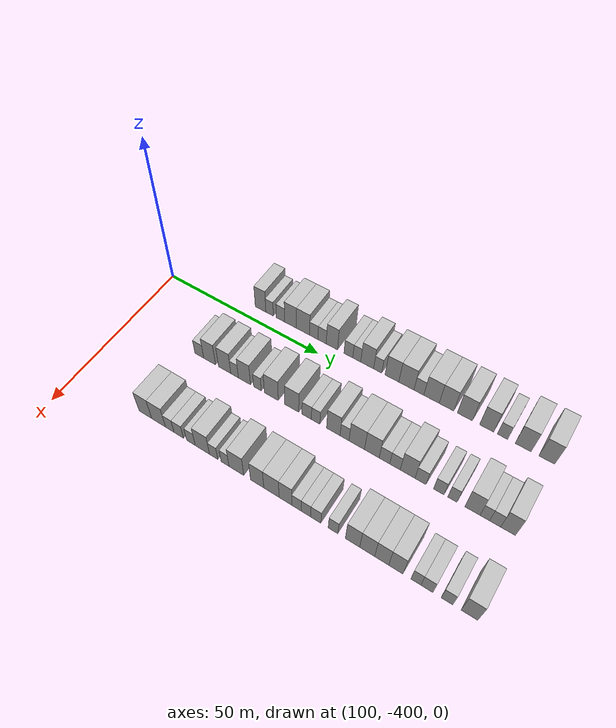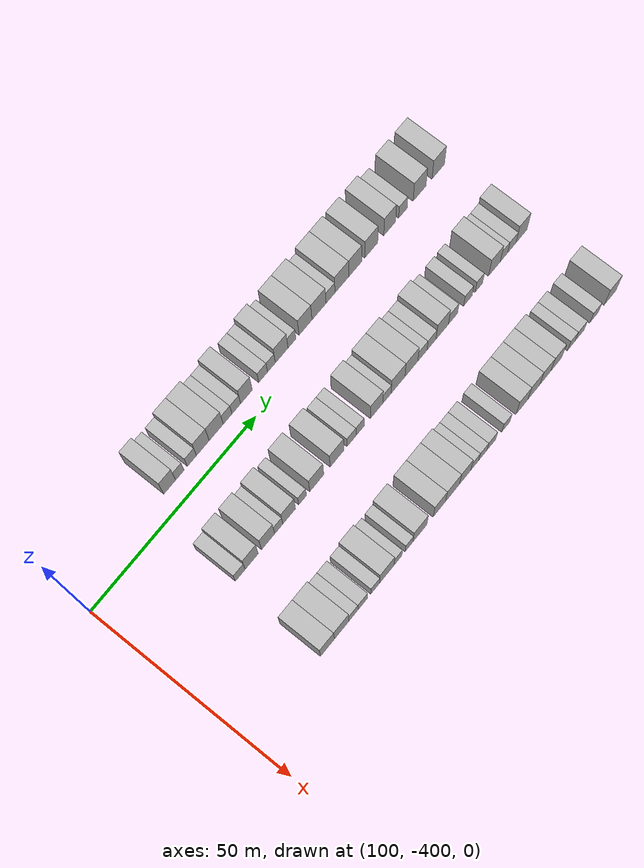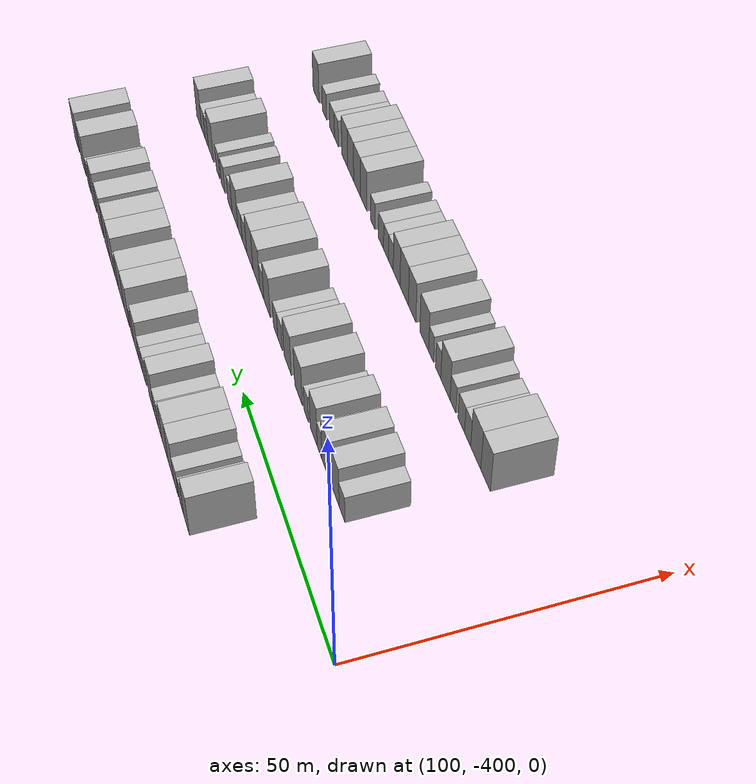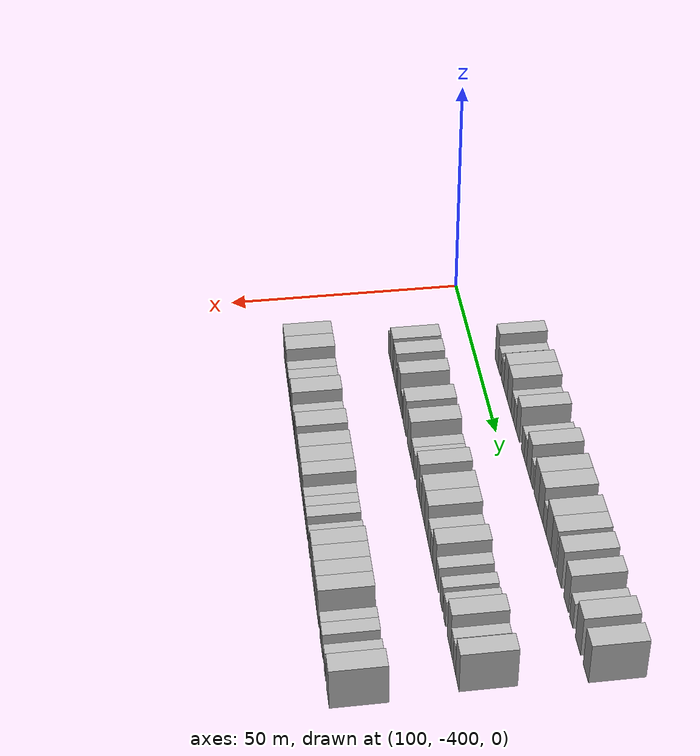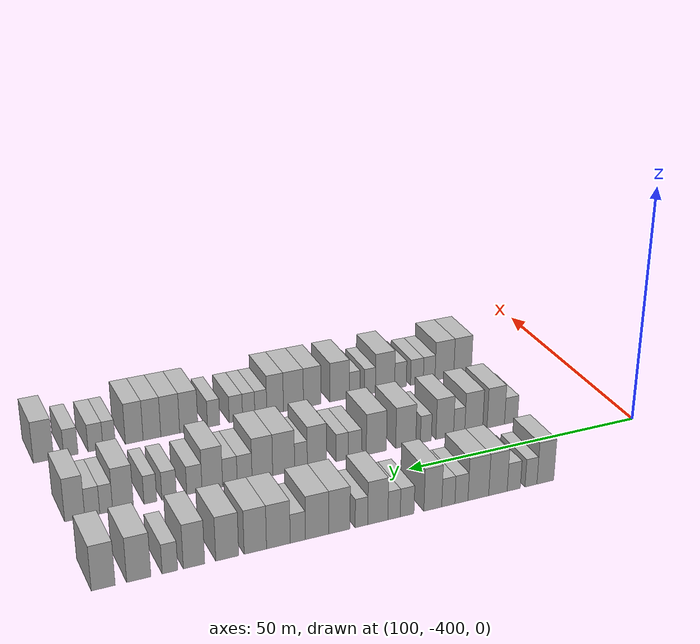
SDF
<sdf version="1.6">
 <world name="default">
  <model name="building_579">
   <static>1</static>
   <pose>91.0000 -371.7043 0 0.000000 0.000000 0.000000</pose>
   <link name="link">
    <pose>0 0 4.50 0 0 0</pose>
    <collision name="collision"><geometry><box><size>10.0000 3.6174 9.0000</size></box></geometry></collision>
    <visual name="visual">
     <cast_shadows>0</cast_shadows>
     <geometry><box><size>10.0000 3.6174 9.0000</size></box></geometry>
     <material>
      <script>
       <uri>model://HANNAS_wall/materials/scripts</uri>
       <uri>model://HANNAS_wall/materials/textures</uri>
       <name>vrc/HANNAS_wall</name>
      </script>
     </material>
    </visual>
   </link>
  </model>
  <model name="building_580">
   <static>1</static>
   <pose>91.0000 -368.6200 0 0.000000 0.000000 0.000000</pose>
   <link name="link">
    <pose>0 0 3.00 0 0 0</pose>
    <collision name="collision"><geometry><box><size>10.0000 2.5512 6.0000</size></box></geometry></collision>
    <visual name="visual">
     <cast_shadows>0</cast_shadows>
     <geometry><box><size>10.0000 2.5512 6.0000</size></box></geometry>
     <material>
      <script>
       <uri>model://HANNAS_wall/materials/scripts</uri>
       <uri>model://HANNAS_wall/materials/textures</uri>
       <name>vrc/HANNAS_wall</name>
      </script>
     </material>
    </visual>
   </link>
  </model>
  <model name="building_581">
   <static>1</static>
   <pose>91.0000 -364.9505 0 0.000000 0.000000 0.000000</pose>
   <link name="link">
    <pose>0 0 3.00 0 0 0</pose>
    <collision name="collision"><geometry><box><size>10.0000 2.7877 6.0000</size></box></geometry></collision>
    <visual name="visual">
     <cast_shadows>0</cast_shadows>
     <geometry><box><size>10.0000 2.7877 6.0000</size></box></geometry>
     <material>
      <script>
       <uri>model://HANNAS_wall/materials/scripts</uri>
       <uri>model://HANNAS_wall/materials/textures</uri>
       <name>vrc/HANNAS_wall</name>
      </script>
     </material>
    </visual>
   </link>
  </model>
  <model name="building_582">
   <static>1</static>
   <pose>91.0000 -361.6066 0 0.000000 0.000000 0.000000</pose>
   <link name="link">
    <pose>0 0 4.50 0 0 0</pose>
    <collision name="collision"><geometry><box><size>10.0000 3.9001 9.0000</size></box></geometry></collision>
    <visual name="visual">
     <cast_shadows>0</cast_shadows>
     <geometry><box><size>10.0000 3.9001 9.0000</size></box></geometry>
     <material>
      <script>
       <uri>model://HANNAS_wall/materials/scripts</uri>
       <uri>model://HANNAS_wall/materials/textures</uri>
       <name>vrc/HANNAS_wall</name>
      </script>
     </material>
    </visual>
   </link>
  </model>
  <model name="building_583">
   <static>1</static>
   <pose>91.0000 -357.4960 0 0.000000 0.000000 0.000000</pose>
   <link name="link">
    <pose>0 0 4.50 0 0 0</pose>
    <collision name="collision"><geometry><box><size>10.0000 4.3210 9.0000</size></box></geometry></collision>
    <visual name="visual">
     <cast_shadows>0</cast_shadows>
     <geometry><box><size>10.0000 4.3210 9.0000</size></box></geometry>
     <material>
      <script>
       <uri>model://HANNAS_wall/materials/scripts</uri>
       <uri>model://HANNAS_wall/materials/textures</uri>
       <name>vrc/HANNAS_wall</name>
      </script>
     </material>
    </visual>
   </link>
  </model>
  <model name="building_584">
   <static>1</static>
   <pose>91.0000 -353.9823 0 0.000000 0.000000 0.000000</pose>
   <link name="link">
    <pose>0 0 3.00 0 0 0</pose>
    <collision name="collision"><geometry><box><size>10.0000 2.7064 6.0000</size></box></geometry></collision>
    <visual name="visual">
     <cast_shadows>0</cast_shadows>
     <geometry><box><size>10.0000 2.7064 6.0000</size></box></geometry>
     <material>
      <script>
       <uri>model://HANNAS_wall/materials/scripts</uri>
       <uri>model://HANNAS_wall/materials/textures</uri>
       <name>vrc/HANNAS_wall</name>
      </script>
     </material>
    </visual>
   </link>
  </model>
  <model name="building_585">
   <static>1</static>
   <pose>91.0000 -351.2836 0 0.000000 0.000000 0.000000</pose>
   <link name="link">
    <pose>0 0 3.00 0 0 0</pose>
    <collision name="collision"><geometry><box><size>10.0000 2.6911 6.0000</size></box></geometry></collision>
    <visual name="visual">
     <cast_shadows>0</cast_shadows>
     <geometry><box><size>10.0000 2.6911 6.0000</size></box></geometry>
     <material>
      <script>
       <uri>model://HANNAS_wall/materials/scripts</uri>
       <uri>model://HANNAS_wall/materials/textures</uri>
       <name>vrc/HANNAS_wall</name>
      </script>
     </material>
    </visual>
   </link>
  </model>
  <model name="building_586">
   <static>1</static>
   <pose>91.0000 -348.1216 0 0.000000 0.000000 0.000000</pose>
   <link name="link">
    <pose>0 0 4.50 0 0 0</pose>
    <collision name="collision"><geometry><box><size>10.0000 3.6330 9.0000</size></box></geometry></collision>
    <visual name="visual">
     <cast_shadows>0</cast_shadows>
     <geometry><box><size>10.0000 3.6330 9.0000</size></box></geometry>
     <material>
      <script>
       <uri>model://HANNAS_wall/materials/scripts</uri>
       <uri>model://HANNAS_wall/materials/textures</uri>
       <name>vrc/HANNAS_wall</name>
      </script>
     </material>
    </visual>
   </link>
  </model>
  <model name="building_587">
   <static>1</static>
   <pose>91.0000 -342.9197 0 0.000000 0.000000 0.000000</pose>
   <link name="link">
    <pose>0 0 3.00 0 0 0</pose>
    <collision name="collision"><geometry><box><size>10.0000 2.7709 6.0000</size></box></geometry></collision>
    <visual name="visual">
     <cast_shadows>0</cast_shadows>
     <geometry><box><size>10.0000 2.7709 6.0000</size></box></geometry>
     <material>
      <script>
       <uri>model://HANNAS_wall/materials/scripts</uri>
       <uri>model://HANNAS_wall/materials/textures</uri>
       <name>vrc/HANNAS_wall</name>
      </script>
     </material>
    </visual>
   </link>
  </model>
  <model name="building_588">
   <static>1</static>
   <pose>91.0000 -340.3031 0 0.000000 0.000000 0.000000</pose>
   <link name="link">
    <pose>0 0 3.00 0 0 0</pose>
    <collision name="collision"><geometry><box><size>10.0000 2.4623 6.0000</size></box></geometry></collision>
    <visual name="visual">
     <cast_shadows>0</cast_shadows>
     <geometry><box><size>10.0000 2.4623 6.0000</size></box></geometry>
     <material>
      <script>
       <uri>model://HANNAS_wall/materials/scripts</uri>
       <uri>model://HANNAS_wall/materials/textures</uri>
       <name>vrc/HANNAS_wall</name>
      </script>
     </material>
    </visual>
   </link>
  </model>
  <model name="building_589">
   <static>1</static>
   <pose>91.0000 -337.0806 0 0.000000 0.000000 0.000000</pose>
   <link name="link">
    <pose>0 0 4.50 0 0 0</pose>
    <collision name="collision"><geometry><box><size>10.0000 3.9828 9.0000</size></box></geometry></collision>
    <visual name="visual">
     <cast_shadows>0</cast_shadows>
     <geometry><box><size>10.0000 3.9828 9.0000</size></box></geometry>
     <material>
      <script>
       <uri>model://HANNAS_wall/materials/scripts</uri>
       <uri>model://HANNAS_wall/materials/textures</uri>
       <name>vrc/HANNAS_wall</name>
      </script>
     </material>
    </visual>
   </link>
  </model>
  <model name="building_590">
   <static>1</static>
   <pose>91.0000 -333.8537 0 0.000000 0.000000 0.000000</pose>
   <link name="link">
    <pose>0 0 3.00 0 0 0</pose>
    <collision name="collision"><geometry><box><size>10.0000 2.4710 6.0000</size></box></geometry></collision>
    <visual name="visual">
     <cast_shadows>0</cast_shadows>
     <geometry><box><size>10.0000 2.4710 6.0000</size></box></geometry>
     <material>
      <script>
       <uri>model://HANNAS_wall/materials/scripts</uri>
       <uri>model://HANNAS_wall/materials/textures</uri>
       <name>vrc/HANNAS_wall</name>
      </script>
     </material>
    </visual>
   </link>
  </model>
  <model name="building_591">
   <static>1</static>
   <pose>91.0000 -329.5565 0 0.000000 0.000000 0.000000</pose>
   <link name="link">
    <pose>0 0 4.50 0 0 0</pose>
    <collision name="collision"><geometry><box><size>10.0000 4.1235 9.0000</size></box></geometry></collision>
    <visual name="visual">
     <cast_shadows>0</cast_shadows>
     <geometry><box><size>10.0000 4.1235 9.0000</size></box></geometry>
     <material>
      <script>
       <uri>model://HANNAS_wall/materials/scripts</uri>
       <uri>model://HANNAS_wall/materials/textures</uri>
       <name>vrc/HANNAS_wall</name>
      </script>
     </material>
    </visual>
   </link>
  </model>
  <model name="building_592">
   <static>1</static>
   <pose>91.0000 -325.2464 0 0.000000 0.000000 0.000000</pose>
   <link name="link">
    <pose>0 0 4.50 0 0 0</pose>
    <collision name="collision"><geometry><box><size>10.0000 4.4966 9.0000</size></box></geometry></collision>
    <visual name="visual">
     <cast_shadows>0</cast_shadows>
     <geometry><box><size>10.0000 4.4966 9.0000</size></box></geometry>
     <material>
      <script>
       <uri>model://HANNAS_wall/materials/scripts</uri>
       <uri>model://HANNAS_wall/materials/textures</uri>
       <name>vrc/HANNAS_wall</name>
      </script>
     </material>
    </visual>
   </link>
  </model>
  <model name="building_593">
   <static>1</static>
   <pose>91.0000 -321.5573 0 0.000000 0.000000 0.000000</pose>
   <link name="link">
    <pose>0 0 3.00 0 0 0</pose>
    <collision name="collision"><geometry><box><size>10.0000 2.8816 6.0000</size></box></geometry></collision>
    <visual name="visual">
     <cast_shadows>0</cast_shadows>
     <geometry><box><size>10.0000 2.8816 6.0000</size></box></geometry>
     <material>
      <script>
       <uri>model://HANNAS_wall/materials/scripts</uri>
       <uri>model://HANNAS_wall/materials/textures</uri>
       <name>vrc/HANNAS_wall</name>
      </script>
     </material>
    </visual>
   </link>
  </model>
  <model name="building_594">
   <static>1</static>
   <pose>91.0000 -317.8878 0 0.000000 0.000000 0.000000</pose>
   <link name="link">
    <pose>0 0 4.50 0 0 0</pose>
    <collision name="collision"><geometry><box><size>10.0000 4.4574 9.0000</size></box></geometry></collision>
    <visual name="visual">
     <cast_shadows>0</cast_shadows>
     <geometry><box><size>10.0000 4.4574 9.0000</size></box></geometry>
     <material>
      <script>
       <uri>model://HANNAS_wall/materials/scripts</uri>
       <uri>model://HANNAS_wall/materials/textures</uri>
       <name>vrc/HANNAS_wall</name>
      </script>
     </material>
    </visual>
   </link>
  </model>
  <model name="building_595">
   <static>1</static>
   <pose>91.0000 -313.5810 0 0.000000 0.000000 0.000000</pose>
   <link name="link">
    <pose>0 0 4.50 0 0 0</pose>
    <collision name="collision"><geometry><box><size>10.0000 4.1562 9.0000</size></box></geometry></collision>
    <visual name="visual">
     <cast_shadows>0</cast_shadows>
     <geometry><box><size>10.0000 4.1562 9.0000</size></box></geometry>
     <material>
      <script>
       <uri>model://HANNAS_wall/materials/scripts</uri>
       <uri>model://HANNAS_wall/materials/textures</uri>
       <name>vrc/HANNAS_wall</name>
      </script>
     </material>
    </visual>
   </link>
  </model>
  <model name="building_596">
   <static>1</static>
   <pose>91.0000 -308.3937 0 0.000000 0.000000 0.000000</pose>
   <link name="link">
    <pose>0 0 4.50 0 0 0</pose>
    <collision name="collision"><geometry><box><size>10.0000 4.2185 9.0000</size></box></geometry></collision>
    <visual name="visual">
     <cast_shadows>0</cast_shadows>
     <geometry><box><size>10.0000 4.2185 9.0000</size></box></geometry>
     <material>
      <script>
       <uri>model://HANNAS_wall/materials/scripts</uri>
       <uri>model://HANNAS_wall/materials/textures</uri>
       <name>vrc/HANNAS_wall</name>
      </script>
     </material>
    </visual>
   </link>
  </model>
  <model name="building_597">
   <static>1</static>
   <pose>91.0000 -302.3483 0 0.000000 0.000000 0.000000</pose>
   <link name="link">
    <pose>0 0 4.50 0 0 0</pose>
    <collision name="collision"><geometry><box><size>10.0000 3.8724 9.0000</size></box></geometry></collision>
    <visual name="visual">
     <cast_shadows>0</cast_shadows>
     <geometry><box><size>10.0000 3.8724 9.0000</size></box></geometry>
     <material>
      <script>
       <uri>model://HANNAS_wall/materials/scripts</uri>
       <uri>model://HANNAS_wall/materials/textures</uri>
       <name>vrc/HANNAS_wall</name>
      </script>
     </material>
    </visual>
   </link>
  </model>
  <model name="building_598">
   <static>1</static>
   <pose>91.0000 -298.0229 0 0.000000 0.000000 0.000000</pose>
   <link name="link">
    <pose>0 0 3.00 0 0 0</pose>
    <collision name="collision"><geometry><box><size>10.0000 2.7784 6.0000</size></box></geometry></collision>
    <visual name="visual">
     <cast_shadows>0</cast_shadows>
     <geometry><box><size>10.0000 2.7784 6.0000</size></box></geometry>
     <material>
      <script>
       <uri>model://HANNAS_wall/materials/scripts</uri>
       <uri>model://HANNAS_wall/materials/textures</uri>
       <name>vrc/HANNAS_wall</name>
      </script>
     </material>
    </visual>
   </link>
  </model>
  <model name="building_599">
   <static>1</static>
   <pose>91.0000 -292.5048 0 0.000000 0.000000 0.000000</pose>
   <link name="link">
    <pose>0 0 4.50 0 0 0</pose>
    <collision name="collision"><geometry><box><size>10.0000 4.2577 9.0000</size></box></geometry></collision>
    <visual name="visual">
     <cast_shadows>0</cast_shadows>
     <geometry><box><size>10.0000 4.2577 9.0000</size></box></geometry>
     <material>
      <script>
       <uri>model://HANNAS_wall/materials/scripts</uri>
       <uri>model://HANNAS_wall/materials/textures</uri>
       <name>vrc/HANNAS_wall</name>
      </script>
     </material>
    </visual>
   </link>
  </model>
  <model name="building_600">
   <static>1</static>
   <pose>91.0000 -286.3013 0 0.000000 0.000000 0.000000</pose>
   <link name="link">
    <pose>0 0 4.50 0 0 0</pose>
    <collision name="collision"><geometry><box><size>10.0000 4.1492 9.0000</size></box></geometry></collision>
    <visual name="visual">
     <cast_shadows>0</cast_shadows>
     <geometry><box><size>10.0000 4.1492 9.0000</size></box></geometry>
     <material>
      <script>
       <uri>model://HANNAS_wall/materials/scripts</uri>
       <uri>model://HANNAS_wall/materials/textures</uri>
       <name>vrc/HANNAS_wall</name>
      </script>
     </material>
    </visual>
   </link>
  </model>
  <model name="building_769">
   <static>1</static>
   <pose>113.0000 -376.5120 0 0.000000 0.000000 0.000000</pose>
   <link name="link">
    <pose>0 0 3.00 0 0 0</pose>
    <collision name="collision"><geometry><box><size>10.0000 2.9760 6.0000</size></box></geometry></collision>
    <visual name="visual">
     <cast_shadows>0</cast_shadows>
     <geometry><box><size>10.0000 2.9760 6.0000</size></box></geometry>
     <material>
      <script>
       <uri>model://HANNAS_wall/materials/scripts</uri>
       <uri>model://HANNAS_wall/materials/textures</uri>
       <name>vrc/HANNAS_wall</name>
      </script>
     </material>
    </visual>
   </link>
  </model>
  <model name="building_770">
   <static>1</static>
   <pose>113.0000 -373.0404 0 0.000000 0.000000 0.000000</pose>
   <link name="link">
    <pose>0 0 4.50 0 0 0</pose>
    <collision name="collision"><geometry><box><size>10.0000 3.9673 9.0000</size></box></geometry></collision>
    <visual name="visual">
     <cast_shadows>0</cast_shadows>
     <geometry><box><size>10.0000 3.9673 9.0000</size></box></geometry>
     <material>
      <script>
       <uri>model://HANNAS_wall/materials/scripts</uri>
       <uri>model://HANNAS_wall/materials/textures</uri>
       <name>vrc/HANNAS_wall</name>
      </script>
     </material>
    </visual>
   </link>
  </model>
  <model name="building_771">
   <static>1</static>
   <pose>113.0000 -368.0447 0 0.000000 0.000000 0.000000</pose>
   <link name="link">
    <pose>0 0 4.50 0 0 0</pose>
    <collision name="collision"><geometry><box><size>10.0000 4.0239 9.0000</size></box></geometry></collision>
    <visual name="visual">
     <cast_shadows>0</cast_shadows>
     <geometry><box><size>10.0000 4.0239 9.0000</size></box></geometry>
     <material>
      <script>
       <uri>model://HANNAS_wall/materials/scripts</uri>
       <uri>model://HANNAS_wall/materials/textures</uri>
       <name>vrc/HANNAS_wall</name>
      </script>
     </material>
    </visual>
   </link>
  </model>
  <model name="building_772">
   <static>1</static>
   <pose>113.0000 -364.7873 0 0.000000 0.000000 0.000000</pose>
   <link name="link">
    <pose>0 0 3.00 0 0 0</pose>
    <collision name="collision"><geometry><box><size>10.0000 2.4910 6.0000</size></box></geometry></collision>
    <visual name="visual">
     <cast_shadows>0</cast_shadows>
     <geometry><box><size>10.0000 2.4910 6.0000</size></box></geometry>
     <material>
      <script>
       <uri>model://HANNAS_wall/materials/scripts</uri>
       <uri>model://HANNAS_wall/materials/textures</uri>
       <name>vrc/HANNAS_wall</name>
      </script>
     </material>
    </visual>
   </link>
  </model>
  <model name="building_773">
   <static>1</static>
   <pose>113.0000 -361.5930 0 0.000000 0.000000 0.000000</pose>
   <link name="link">
    <pose>0 0 4.50 0 0 0</pose>
    <collision name="collision"><geometry><box><size>10.0000 3.8975 9.0000</size></box></geometry></collision>
    <visual name="visual">
     <cast_shadows>0</cast_shadows>
     <geometry><box><size>10.0000 3.8975 9.0000</size></box></geometry>
     <material>
      <script>
       <uri>model://HANNAS_wall/materials/scripts</uri>
       <uri>model://HANNAS_wall/materials/textures</uri>
       <name>vrc/HANNAS_wall</name>
      </script>
     </material>
    </visual>
   </link>
  </model>
  <model name="building_774">
   <static>1</static>
   <pose>113.0000 -357.4413 0 0.000000 0.000000 0.000000</pose>
   <link name="link">
    <pose>0 0 3.00 0 0 0</pose>
    <collision name="collision"><geometry><box><size>10.0000 2.4059 6.0000</size></box></geometry></collision>
    <visual name="visual">
     <cast_shadows>0</cast_shadows>
     <geometry><box><size>10.0000 2.4059 6.0000</size></box></geometry>
     <material>
      <script>
       <uri>model://HANNAS_wall/materials/scripts</uri>
       <uri>model://HANNAS_wall/materials/textures</uri>
       <name>vrc/HANNAS_wall</name>
      </script>
     </material>
    </visual>
   </link>
  </model>
  <model name="building_775">
   <static>1</static>
   <pose>113.0000 -353.0574 0 0.000000 0.000000 0.000000</pose>
   <link name="link">
    <pose>0 0 4.50 0 0 0</pose>
    <collision name="collision"><geometry><box><size>10.0000 4.3620 9.0000</size></box></geometry></collision>
    <visual name="visual">
     <cast_shadows>0</cast_shadows>
     <geometry><box><size>10.0000 4.3620 9.0000</size></box></geometry>
     <material>
      <script>
       <uri>model://HANNAS_wall/materials/scripts</uri>
       <uri>model://HANNAS_wall/materials/textures</uri>
       <name>vrc/HANNAS_wall</name>
      </script>
     </material>
    </visual>
   </link>
  </model>
  <model name="building_776">
   <static>1</static>
   <pose>113.0000 -346.7268 0 0.000000 0.000000 0.000000</pose>
   <link name="link">
    <pose>0 0 4.50 0 0 0</pose>
    <collision name="collision"><geometry><box><size>10.0000 4.2990 9.0000</size></box></geometry></collision>
    <visual name="visual">
     <cast_shadows>0</cast_shadows>
     <geometry><box><size>10.0000 4.2990 9.0000</size></box></geometry>
     <material>
      <script>
       <uri>model://HANNAS_wall/materials/scripts</uri>
       <uri>model://HANNAS_wall/materials/textures</uri>
       <name>vrc/HANNAS_wall</name>
      </script>
     </material>
    </visual>
   </link>
  </model>
  <model name="building_777">
   <static>1</static>
   <pose>113.0000 -342.1666 0 0.000000 0.000000 0.000000</pose>
   <link name="link">
    <pose>0 0 3.00 0 0 0</pose>
    <collision name="collision"><geometry><box><size>10.0000 2.8213 6.0000</size></box></geometry></collision>
    <visual name="visual">
     <cast_shadows>0</cast_shadows>
     <geometry><box><size>10.0000 2.8213 6.0000</size></box></geometry>
     <material>
      <script>
       <uri>model://HANNAS_wall/materials/scripts</uri>
       <uri>model://HANNAS_wall/materials/textures</uri>
       <name>vrc/HANNAS_wall</name>
      </script>
     </material>
    </visual>
   </link>
  </model>
  <model name="building_778">
   <static>1</static>
   <pose>113.0000 -339.4813 0 0.000000 0.000000 0.000000</pose>
   <link name="link">
    <pose>0 0 3.00 0 0 0</pose>
    <collision name="collision"><geometry><box><size>10.0000 2.5494 6.0000</size></box></geometry></collision>
    <visual name="visual">
     <cast_shadows>0</cast_shadows>
     <geometry><box><size>10.0000 2.5494 6.0000</size></box></geometry>
     <material>
      <script>
       <uri>model://HANNAS_wall/materials/scripts</uri>
       <uri>model://HANNAS_wall/materials/textures</uri>
       <name>vrc/HANNAS_wall</name>
      </script>
     </material>
    </visual>
   </link>
  </model>
  <model name="building_779">
   <static>1</static>
   <pose>113.0000 -334.2210 0 0.000000 0.000000 0.000000</pose>
   <link name="link">
    <pose>0 0 4.50 0 0 0</pose>
    <collision name="collision"><geometry><box><size>10.0000 3.9711 9.0000</size></box></geometry></collision>
    <visual name="visual">
     <cast_shadows>0</cast_shadows>
     <geometry><box><size>10.0000 3.9711 9.0000</size></box></geometry>
     <material>
      <script>
       <uri>model://HANNAS_wall/materials/scripts</uri>
       <uri>model://HANNAS_wall/materials/textures</uri>
       <name>vrc/HANNAS_wall</name>
      </script>
     </material>
    </visual>
   </link>
  </model>
  <model name="building_780">
   <static>1</static>
   <pose>113.0000 -330.9307 0 0.000000 0.000000 0.000000</pose>
   <link name="link">
    <pose>0 0 3.00 0 0 0</pose>
    <collision name="collision"><geometry><box><size>10.0000 2.6094 6.0000</size></box></geometry></collision>
    <visual name="visual">
     <cast_shadows>0</cast_shadows>
     <geometry><box><size>10.0000 2.6094 6.0000</size></box></geometry>
     <material>
      <script>
       <uri>model://HANNAS_wall/materials/scripts</uri>
       <uri>model://HANNAS_wall/materials/textures</uri>
       <name>vrc/HANNAS_wall</name>
      </script>
     </material>
    </visual>
   </link>
  </model>
  <model name="building_781">
   <static>1</static>
   <pose>113.0000 -327.3932 0 0.000000 0.000000 0.000000</pose>
   <link name="link">
    <pose>0 0 4.50 0 0 0</pose>
    <collision name="collision"><geometry><box><size>10.0000 4.4658 9.0000</size></box></geometry></collision>
    <visual name="visual">
     <cast_shadows>0</cast_shadows>
     <geometry><box><size>10.0000 4.4658 9.0000</size></box></geometry>
     <material>
      <script>
       <uri>model://HANNAS_wall/materials/scripts</uri>
       <uri>model://HANNAS_wall/materials/textures</uri>
       <name>vrc/HANNAS_wall</name>
      </script>
     </material>
    </visual>
   </link>
  </model>
  <model name="building_782">
   <static>1</static>
   <pose>113.0000 -323.0804 0 0.000000 0.000000 0.000000</pose>
   <link name="link">
    <pose>0 0 4.50 0 0 0</pose>
    <collision name="collision"><geometry><box><size>10.0000 4.1597 9.0000</size></box></geometry></collision>
    <visual name="visual">
     <cast_shadows>0</cast_shadows>
     <geometry><box><size>10.0000 4.1597 9.0000</size></box></geometry>
     <material>
      <script>
       <uri>model://HANNAS_wall/materials/scripts</uri>
       <uri>model://HANNAS_wall/materials/textures</uri>
       <name>vrc/HANNAS_wall</name>
      </script>
     </material>
    </visual>
   </link>
  </model>
  <model name="building_783">
   <static>1</static>
   <pose>113.0000 -319.5192 0 0.000000 0.000000 0.000000</pose>
   <link name="link">
    <pose>0 0 3.00 0 0 0</pose>
    <collision name="collision"><geometry><box><size>10.0000 2.9627 6.0000</size></box></geometry></collision>
    <visual name="visual">
     <cast_shadows>0</cast_shadows>
     <geometry><box><size>10.0000 2.9627 6.0000</size></box></geometry>
     <material>
      <script>
       <uri>model://HANNAS_wall/materials/scripts</uri>
       <uri>model://HANNAS_wall/materials/textures</uri>
       <name>vrc/HANNAS_wall</name>
      </script>
     </material>
    </visual>
   </link>
  </model>
  <model name="building_784">
   <static>1</static>
   <pose>113.0000 -316.5920 0 0.000000 0.000000 0.000000</pose>
   <link name="link">
    <pose>0 0 3.00 0 0 0</pose>
    <collision name="collision"><geometry><box><size>10.0000 2.8918 6.0000</size></box></geometry></collision>
    <visual name="visual">
     <cast_shadows>0</cast_shadows>
     <geometry><box><size>10.0000 2.8918 6.0000</size></box></geometry>
     <material>
      <script>
       <uri>model://HANNAS_wall/materials/scripts</uri>
       <uri>model://HANNAS_wall/materials/textures</uri>
       <name>vrc/HANNAS_wall</name>
      </script>
     </material>
    </visual>
   </link>
  </model>
  <model name="building_785">
   <static>1</static>
   <pose>113.0000 -313.1194 0 0.000000 0.000000 0.000000</pose>
   <link name="link">
    <pose>0 0 4.50 0 0 0</pose>
    <collision name="collision"><geometry><box><size>10.0000 4.0535 9.0000</size></box></geometry></collision>
    <visual name="visual">
     <cast_shadows>0</cast_shadows>
     <geometry><box><size>10.0000 4.0535 9.0000</size></box></geometry>
     <material>
      <script>
       <uri>model://HANNAS_wall/materials/scripts</uri>
       <uri>model://HANNAS_wall/materials/textures</uri>
       <name>vrc/HANNAS_wall</name>
      </script>
     </material>
    </visual>
   </link>
  </model>
  <model name="building_786">
   <static>1</static>
   <pose>113.0000 -309.6021 0 0.000000 0.000000 0.000000</pose>
   <link name="link">
    <pose>0 0 3.00 0 0 0</pose>
    <collision name="collision"><geometry><box><size>10.0000 2.9811 6.0000</size></box></geometry></collision>
    <visual name="visual">
     <cast_shadows>0</cast_shadows>
     <geometry><box><size>10.0000 2.9811 6.0000</size></box></geometry>
     <material>
      <script>
       <uri>model://HANNAS_wall/materials/scripts</uri>
       <uri>model://HANNAS_wall/materials/textures</uri>
       <name>vrc/HANNAS_wall</name>
      </script>
     </material>
    </visual>
   </link>
  </model>
  <model name="building_787">
   <static>1</static>
   <pose>113.0000 -304.7137 0 0.000000 0.000000 0.000000</pose>
   <link name="link">
    <pose>0 0 3.00 0 0 0</pose>
    <collision name="collision"><geometry><box><size>10.0000 2.7955 6.0000</size></box></geometry></collision>
    <visual name="visual">
     <cast_shadows>0</cast_shadows>
     <geometry><box><size>10.0000 2.7955 6.0000</size></box></geometry>
     <material>
      <script>
       <uri>model://HANNAS_wall/materials/scripts</uri>
       <uri>model://HANNAS_wall/materials/textures</uri>
       <name>vrc/HANNAS_wall</name>
      </script>
     </material>
    </visual>
   </link>
  </model>
  <model name="building_788">
   <static>1</static>
   <pose>113.0000 -301.0955 0 0.000000 0.000000 0.000000</pose>
   <link name="link">
    <pose>0 0 3.00 0 0 0</pose>
    <collision name="collision"><geometry><box><size>10.0000 2.4411 6.0000</size></box></geometry></collision>
    <visual name="visual">
     <cast_shadows>0</cast_shadows>
     <geometry><box><size>10.0000 2.4411 6.0000</size></box></geometry>
     <material>
      <script>
       <uri>model://HANNAS_wall/materials/scripts</uri>
       <uri>model://HANNAS_wall/materials/textures</uri>
       <name>vrc/HANNAS_wall</name>
      </script>
     </material>
    </visual>
   </link>
  </model>
  <model name="building_789">
   <static>1</static>
   <pose>113.0000 -295.9185 0 0.000000 0.000000 0.000000</pose>
   <link name="link">
    <pose>0 0 4.50 0 0 0</pose>
    <collision name="collision"><geometry><box><size>10.0000 3.9128 9.0000</size></box></geometry></collision>
    <visual name="visual">
     <cast_shadows>0</cast_shadows>
     <geometry><box><size>10.0000 3.9128 9.0000</size></box></geometry>
     <material>
      <script>
       <uri>model://HANNAS_wall/materials/scripts</uri>
       <uri>model://HANNAS_wall/materials/textures</uri>
       <name>vrc/HANNAS_wall</name>
      </script>
     </material>
    </visual>
   </link>
  </model>
  <model name="building_790">
   <static>1</static>
   <pose>113.0000 -292.7520 0 0.000000 0.000000 0.000000</pose>
   <link name="link">
    <pose>0 0 3.00 0 0 0</pose>
    <collision name="collision"><geometry><box><size>10.0000 2.4202 6.0000</size></box></geometry></collision>
    <visual name="visual">
     <cast_shadows>0</cast_shadows>
     <geometry><box><size>10.0000 2.4202 6.0000</size></box></geometry>
     <material>
      <script>
       <uri>model://HANNAS_wall/materials/scripts</uri>
       <uri>model://HANNAS_wall/materials/textures</uri>
       <name>vrc/HANNAS_wall</name>
      </script>
     </material>
    </visual>
   </link>
  </model>
  <model name="building_791">
   <static>1</static>
   <pose>113.0000 -290.1467 0 0.000000 0.000000 0.000000</pose>
   <link name="link">
    <pose>0 0 3.00 0 0 0</pose>
    <collision name="collision"><geometry><box><size>10.0000 2.7904 6.0000</size></box></geometry></collision>
    <visual name="visual">
     <cast_shadows>0</cast_shadows>
     <geometry><box><size>10.0000 2.7904 6.0000</size></box></geometry>
     <material>
      <script>
       <uri>model://HANNAS_wall/materials/scripts</uri>
       <uri>model://HANNAS_wall/materials/textures</uri>
       <name>vrc/HANNAS_wall</name>
      </script>
     </material>
    </visual>
   </link>
  </model>
  <model name="building_792">
   <static>1</static>
   <pose>113.0000 -286.9002 0 0.000000 0.000000 0.000000</pose>
   <link name="link">
    <pose>0 0 4.50 0 0 0</pose>
    <collision name="collision"><geometry><box><size>10.0000 3.7025 9.0000</size></box></geometry></collision>
    <visual name="visual">
     <cast_shadows>0</cast_shadows>
     <geometry><box><size>10.0000 3.7025 9.0000</size></box></geometry>
     <material>
      <script>
       <uri>model://HANNAS_wall/materials/scripts</uri>
       <uri>model://HANNAS_wall/materials/textures</uri>
       <name>vrc/HANNAS_wall</name>
      </script>
     </material>
    </visual>
   </link>
  </model>
  <model name="building_948">
   <static>1</static>
   <pose>135.0000 -376.8943 0 0.000000 0.000000 0.000000</pose>
   <link name="link">
    <pose>0 0 4.50 0 0 0</pose>
    <collision name="collision"><geometry><box><size>10.0000 4.2114 9.0000</size></box></geometry></collision>
    <visual name="visual">
     <cast_shadows>0</cast_shadows>
     <geometry><box><size>10.0000 4.2114 9.0000</size></box></geometry>
     <material>
      <script>
       <uri>model://HANNAS_wall/materials/scripts</uri>
       <uri>model://HANNAS_wall/materials/textures</uri>
       <name>vrc/HANNAS_wall</name>
      </script>
     </material>
    </visual>
   </link>
  </model>
  <model name="building_949">
   <static>1</static>
   <pose>135.0000 -372.5572 0 0.000000 0.000000 0.000000</pose>
   <link name="link">
    <pose>0 0 4.50 0 0 0</pose>
    <collision name="collision"><geometry><box><size>10.0000 4.4627 9.0000</size></box></geometry></collision>
    <visual name="visual">
     <cast_shadows>0</cast_shadows>
     <geometry><box><size>10.0000 4.4627 9.0000</size></box></geometry>
     <material>
      <script>
       <uri>model://HANNAS_wall/materials/scripts</uri>
       <uri>model://HANNAS_wall/materials/textures</uri>
       <name>vrc/HANNAS_wall</name>
      </script>
     </material>
    </visual>
   </link>
  </model>
  <model name="building_950">
   <static>1</static>
   <pose>135.0000 -368.9476 0 0.000000 0.000000 0.000000</pose>
   <link name="link">
    <pose>0 0 3.00 0 0 0</pose>
    <collision name="collision"><geometry><box><size>10.0000 2.7566 6.0000</size></box></geometry></collision>
    <visual name="visual">
     <cast_shadows>0</cast_shadows>
     <geometry><box><size>10.0000 2.7566 6.0000</size></box></geometry>
     <material>
      <script>
       <uri>model://HANNAS_wall/materials/scripts</uri>
       <uri>model://HANNAS_wall/materials/textures</uri>
       <name>vrc/HANNAS_wall</name>
      </script>
     </material>
    </visual>
   </link>
  </model>
  <model name="building_951">
   <static>1</static>
   <pose>135.0000 -366.0797 0 0.000000 0.000000 0.000000</pose>
   <link name="link">
    <pose>0 0 3.00 0 0 0</pose>
    <collision name="collision"><geometry><box><size>10.0000 2.9792 6.0000</size></box></geometry></collision>
    <visual name="visual">
     <cast_shadows>0</cast_shadows>
     <geometry><box><size>10.0000 2.9792 6.0000</size></box></geometry>
     <material>
      <script>
       <uri>model://HANNAS_wall/materials/scripts</uri>
       <uri>model://HANNAS_wall/materials/textures</uri>
       <name>vrc/HANNAS_wall</name>
      </script>
     </material>
    </visual>
   </link>
  </model>
  <model name="building_952">
   <static>1</static>
   <pose>135.0000 -362.2330 0 0.000000 0.000000 0.000000</pose>
   <link name="link">
    <pose>0 0 3.00 0 0 0</pose>
    <collision name="collision"><geometry><box><size>10.0000 2.7142 6.0000</size></box></geometry></collision>
    <visual name="visual">
     <cast_shadows>0</cast_shadows>
     <geometry><box><size>10.0000 2.7142 6.0000</size></box></geometry>
     <material>
      <script>
       <uri>model://HANNAS_wall/materials/scripts</uri>
       <uri>model://HANNAS_wall/materials/textures</uri>
       <name>vrc/HANNAS_wall</name>
      </script>
     </material>
    </visual>
   </link>
  </model>
  <model name="building_953">
   <static>1</static>
   <pose>135.0000 -358.6585 0 0.000000 0.000000 0.000000</pose>
   <link name="link">
    <pose>0 0 4.50 0 0 0</pose>
    <collision name="collision"><geometry><box><size>10.0000 4.4347 9.0000</size></box></geometry></collision>
    <visual name="visual">
     <cast_shadows>0</cast_shadows>
     <geometry><box><size>10.0000 4.4347 9.0000</size></box></geometry>
     <material>
      <script>
       <uri>model://HANNAS_wall/materials/scripts</uri>
       <uri>model://HANNAS_wall/materials/textures</uri>
       <name>vrc/HANNAS_wall</name>
      </script>
     </material>
    </visual>
   </link>
  </model>
  <model name="building_954">
   <static>1</static>
   <pose>135.0000 -355.1913 0 0.000000 0.000000 0.000000</pose>
   <link name="link">
    <pose>0 0 3.00 0 0 0</pose>
    <collision name="collision"><geometry><box><size>10.0000 2.4997 6.0000</size></box></geometry></collision>
    <visual name="visual">
     <cast_shadows>0</cast_shadows>
     <geometry><box><size>10.0000 2.4997 6.0000</size></box></geometry>
     <material>
      <script>
       <uri>model://HANNAS_wall/materials/scripts</uri>
       <uri>model://HANNAS_wall/materials/textures</uri>
       <name>vrc/HANNAS_wall</name>
      </script>
     </material>
    </visual>
   </link>
  </model>
  <model name="building_955">
   <static>1</static>
   <pose>135.0000 -351.7305 0 0.000000 0.000000 0.000000</pose>
   <link name="link">
    <pose>0 0 3.00 0 0 0</pose>
    <collision name="collision"><geometry><box><size>10.0000 2.4218 6.0000</size></box></geometry></collision>
    <visual name="visual">
     <cast_shadows>0</cast_shadows>
     <geometry><box><size>10.0000 2.4218 6.0000</size></box></geometry>
     <material>
      <script>
       <uri>model://HANNAS_wall/materials/scripts</uri>
       <uri>model://HANNAS_wall/materials/textures</uri>
       <name>vrc/HANNAS_wall</name>
      </script>
     </material>
    </visual>
   </link>
  </model>
  <model name="building_956">
   <static>1</static>
   <pose>135.0000 -348.3243 0 0.000000 0.000000 0.000000</pose>
   <link name="link">
    <pose>0 0 4.50 0 0 0</pose>
    <collision name="collision"><geometry><box><size>10.0000 4.3906 9.0000</size></box></geometry></collision>
    <visual name="visual">
     <cast_shadows>0</cast_shadows>
     <geometry><box><size>10.0000 4.3906 9.0000</size></box></geometry>
     <material>
      <script>
       <uri>model://HANNAS_wall/materials/scripts</uri>
       <uri>model://HANNAS_wall/materials/textures</uri>
       <name>vrc/HANNAS_wall</name>
      </script>
     </material>
    </visual>
   </link>
  </model>
  <model name="building_957">
   <static>1</static>
   <pose>135.0000 -342.1845 0 0.000000 0.000000 0.000000</pose>
   <link name="link">
    <pose>0 0 4.50 0 0 0</pose>
    <collision name="collision"><geometry><box><size>10.0000 3.8890 9.0000</size></box></geometry></collision>
    <visual name="visual">
     <cast_shadows>0</cast_shadows>
     <geometry><box><size>10.0000 3.8890 9.0000</size></box></geometry>
     <material>
      <script>
       <uri>model://HANNAS_wall/materials/scripts</uri>
       <uri>model://HANNAS_wall/materials/textures</uri>
       <name>vrc/HANNAS_wall</name>
      </script>
     </material>
    </visual>
   </link>
  </model>
  <model name="building_958">
   <static>1</static>
   <pose>135.0000 -338.0421 0 0.000000 0.000000 0.000000</pose>
   <link name="link">
    <pose>0 0 4.50 0 0 0</pose>
    <collision name="collision"><geometry><box><size>10.0000 4.3958 9.0000</size></box></geometry></collision>
    <visual name="visual">
     <cast_shadows>0</cast_shadows>
     <geometry><box><size>10.0000 4.3958 9.0000</size></box></geometry>
     <material>
      <script>
       <uri>model://HANNAS_wall/materials/scripts</uri>
       <uri>model://HANNAS_wall/materials/textures</uri>
       <name>vrc/HANNAS_wall</name>
      </script>
     </material>
    </visual>
   </link>
  </model>
  <model name="building_959">
   <static>1</static>
   <pose>135.0000 -334.0307 0 0.000000 0.000000 0.000000</pose>
   <link name="link">
    <pose>0 0 4.50 0 0 0</pose>
    <collision name="collision"><geometry><box><size>10.0000 3.6271 9.0000</size></box></geometry></collision>
    <visual name="visual">
     <cast_shadows>0</cast_shadows>
     <geometry><box><size>10.0000 3.6271 9.0000</size></box></geometry>
     <material>
      <script>
       <uri>model://HANNAS_wall/materials/scripts</uri>
       <uri>model://HANNAS_wall/materials/textures</uri>
       <name>vrc/HANNAS_wall</name>
      </script>
     </material>
    </visual>
   </link>
  </model>
  <model name="building_960">
   <static>1</static>
   <pose>135.0000 -330.9257 0 0.000000 0.000000 0.000000</pose>
   <link name="link">
    <pose>0 0 3.00 0 0 0</pose>
    <collision name="collision"><geometry><box><size>10.0000 2.5828 6.0000</size></box></geometry></collision>
    <visual name="visual">
     <cast_shadows>0</cast_shadows>
     <geometry><box><size>10.0000 2.5828 6.0000</size></box></geometry>
     <material>
      <script>
       <uri>model://HANNAS_wall/materials/scripts</uri>
       <uri>model://HANNAS_wall/materials/textures</uri>
       <name>vrc/HANNAS_wall</name>
      </script>
     </material>
    </visual>
   </link>
  </model>
  <model name="building_961">
   <static>1</static>
   <pose>135.0000 -328.3122 0 0.000000 0.000000 0.000000</pose>
   <link name="link">
    <pose>0 0 3.00 0 0 0</pose>
    <collision name="collision"><geometry><box><size>10.0000 2.6442 6.0000</size></box></geometry></collision>
    <visual name="visual">
     <cast_shadows>0</cast_shadows>
     <geometry><box><size>10.0000 2.6442 6.0000</size></box></geometry>
     <material>
      <script>
       <uri>model://HANNAS_wall/materials/scripts</uri>
       <uri>model://HANNAS_wall/materials/textures</uri>
       <name>vrc/HANNAS_wall</name>
      </script>
     </material>
    </visual>
   </link>
  </model>
  <model name="building_962">
   <static>1</static>
   <pose>135.0000 -325.5616 0 0.000000 0.000000 0.000000</pose>
   <link name="link">
    <pose>0 0 3.00 0 0 0</pose>
    <collision name="collision"><geometry><box><size>10.0000 2.8570 6.0000</size></box></geometry></collision>
    <visual name="visual">
     <cast_shadows>0</cast_shadows>
     <geometry><box><size>10.0000 2.8570 6.0000</size></box></geometry>
     <material>
      <script>
       <uri>model://HANNAS_wall/materials/scripts</uri>
       <uri>model://HANNAS_wall/materials/textures</uri>
       <name>vrc/HANNAS_wall</name>
      </script>
     </material>
    </visual>
   </link>
  </model>
  <model name="building_963">
   <static>1</static>
   <pose>135.0000 -320.8240 0 0.000000 0.000000 0.000000</pose>
   <link name="link">
    <pose>0 0 3.00 0 0 0</pose>
    <collision name="collision"><geometry><box><size>10.0000 2.6181 6.0000</size></box></geometry></collision>
    <visual name="visual">
     <cast_shadows>0</cast_shadows>
     <geometry><box><size>10.0000 2.6181 6.0000</size></box></geometry>
     <material>
      <script>
       <uri>model://HANNAS_wall/materials/scripts</uri>
       <uri>model://HANNAS_wall/materials/textures</uri>
       <name>vrc/HANNAS_wall</name>
      </script>
     </material>
    </visual>
   </link>
  </model>
  <model name="building_964">
   <static>1</static>
   <pose>135.0000 -315.6060 0 0.000000 0.000000 0.000000</pose>
   <link name="link">
    <pose>0 0 4.50 0 0 0</pose>
    <collision name="collision"><geometry><box><size>10.0000 3.8179 9.0000</size></box></geometry></collision>
    <visual name="visual">
     <cast_shadows>0</cast_shadows>
     <geometry><box><size>10.0000 3.8179 9.0000</size></box></geometry>
     <material>
      <script>
       <uri>model://HANNAS_wall/materials/scripts</uri>
       <uri>model://HANNAS_wall/materials/textures</uri>
       <name>vrc/HANNAS_wall</name>
      </script>
     </material>
    </visual>
   </link>
  </model>
  <model name="building_965">
   <static>1</static>
   <pose>135.0000 -311.7419 0 0.000000 0.000000 0.000000</pose>
   <link name="link">
    <pose>0 0 4.50 0 0 0</pose>
    <collision name="collision"><geometry><box><size>10.0000 3.9104 9.0000</size></box></geometry></collision>
    <visual name="visual">
     <cast_shadows>0</cast_shadows>
     <geometry><box><size>10.0000 3.9104 9.0000</size></box></geometry>
     <material>
      <script>
       <uri>model://HANNAS_wall/materials/scripts</uri>
       <uri>model://HANNAS_wall/materials/textures</uri>
       <name>vrc/HANNAS_wall</name>
      </script>
     </material>
    </visual>
   </link>
  </model>
  <model name="building_966">
   <static>1</static>
   <pose>135.0000 -307.9684 0 0.000000 0.000000 0.000000</pose>
   <link name="link">
    <pose>0 0 4.50 0 0 0</pose>
    <collision name="collision"><geometry><box><size>10.0000 3.6365 9.0000</size></box></geometry></collision>
    <visual name="visual">
     <cast_shadows>0</cast_shadows>
     <geometry><box><size>10.0000 3.6365 9.0000</size></box></geometry>
     <material>
      <script>
       <uri>model://HANNAS_wall/materials/scripts</uri>
       <uri>model://HANNAS_wall/materials/textures</uri>
       <name>vrc/HANNAS_wall</name>
      </script>
     </material>
    </visual>
   </link>
  </model>
  <model name="building_967">
   <static>1</static>
   <pose>135.0000 -304.3392 0 0.000000 0.000000 0.000000</pose>
   <link name="link">
    <pose>0 0 4.50 0 0 0</pose>
    <collision name="collision"><geometry><box><size>10.0000 3.6220 9.0000</size></box></geometry></collision>
    <visual name="visual">
     <cast_shadows>0</cast_shadows>
     <geometry><box><size>10.0000 3.6220 9.0000</size></box></geometry>
     <material>
      <script>
       <uri>model://HANNAS_wall/materials/scripts</uri>
       <uri>model://HANNAS_wall/materials/textures</uri>
       <name>vrc/HANNAS_wall</name>
      </script>
     </material>
    </visual>
   </link>
  </model>
  <model name="building_968">
   <static>1</static>
   <pose>135.0000 -299.2767 0 0.000000 0.000000 0.000000</pose>
   <link name="link">
    <pose>0 0 3.00 0 0 0</pose>
    <collision name="collision"><geometry><box><size>10.0000 2.5030 6.0000</size></box></geometry></collision>
    <visual name="visual">
     <cast_shadows>0</cast_shadows>
     <geometry><box><size>10.0000 2.5030 6.0000</size></box></geometry>
     <material>
      <script>
       <uri>model://HANNAS_wall/materials/scripts</uri>
       <uri>model://HANNAS_wall/materials/textures</uri>
       <name>vrc/HANNAS_wall</name>
      </script>
     </material>
    </visual>
   </link>
  </model>
  <model name="building_969">
   <static>1</static>
   <pose>135.0000 -296.5346 0 0.000000 0.000000 0.000000</pose>
   <link name="link">
    <pose>0 0 3.00 0 0 0</pose>
    <collision name="collision"><geometry><box><size>10.0000 2.9811 6.0000</size></box></geometry></collision>
    <visual name="visual">
     <cast_shadows>0</cast_shadows>
     <geometry><box><size>10.0000 2.9811 6.0000</size></box></geometry>
     <material>
      <script>
       <uri>model://HANNAS_wall/materials/scripts</uri>
       <uri>model://HANNAS_wall/materials/textures</uri>
       <name>vrc/HANNAS_wall</name>
      </script>
     </material>
    </visual>
   </link>
  </model>
  <model name="building_970">
   <static>1</static>
   <pose>135.0000 -291.6347 0 0.000000 0.000000 0.000000</pose>
   <link name="link">
    <pose>0 0 3.00 0 0 0</pose>
    <collision name="collision"><geometry><box><size>10.0000 2.8187 6.0000</size></box></geometry></collision>
    <visual name="visual">
     <cast_shadows>0</cast_shadows>
     <geometry><box><size>10.0000 2.8187 6.0000</size></box></geometry>
     <material>
      <script>
       <uri>model://HANNAS_wall/materials/scripts</uri>
       <uri>model://HANNAS_wall/materials/textures</uri>
       <name>vrc/HANNAS_wall</name>
      </script>
     </material>
    </visual>
   </link>
  </model>
  <model name="building_971">
   <static>1</static>
   <pose>135.0000 -286.2434 0 0.000000 0.000000 0.000000</pose>
   <link name="link">
    <pose>0 0 4.50 0 0 0</pose>
    <collision name="collision"><geometry><box><size>10.0000 3.9640 9.0000</size></box></geometry></collision>
    <visual name="visual">
     <cast_shadows>0</cast_shadows>
     <geometry><box><size>10.0000 3.9640 9.0000</size></box></geometry>
     <material>
      <script>
       <uri>model://HANNAS_wall/materials/scripts</uri>
       <uri>model://HANNAS_wall/materials/textures</uri>
       <name>vrc/HANNAS_wall</name>
      </script>
     </material>
    </visual>
   </link>
  </model>
 </world>
</sdf>
